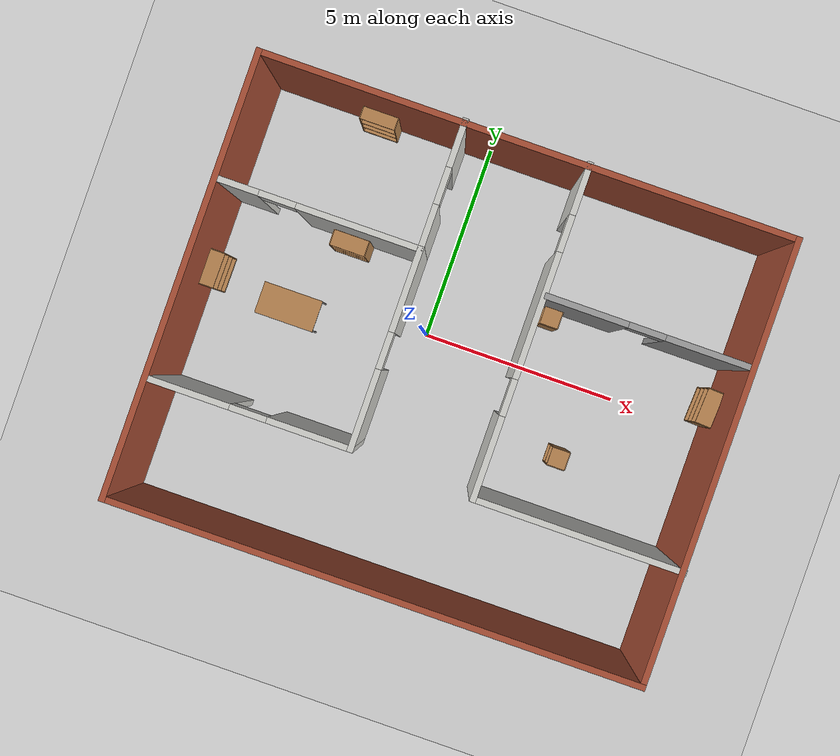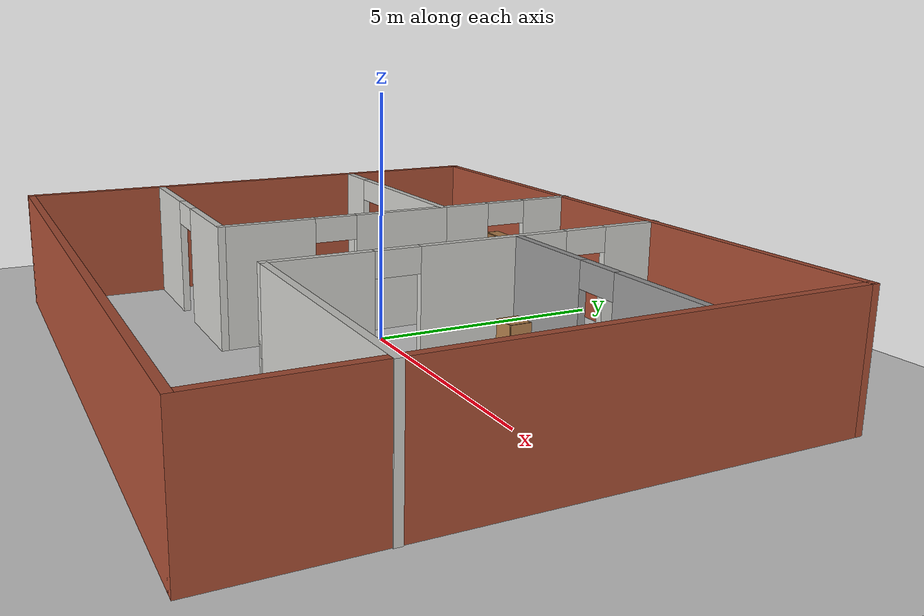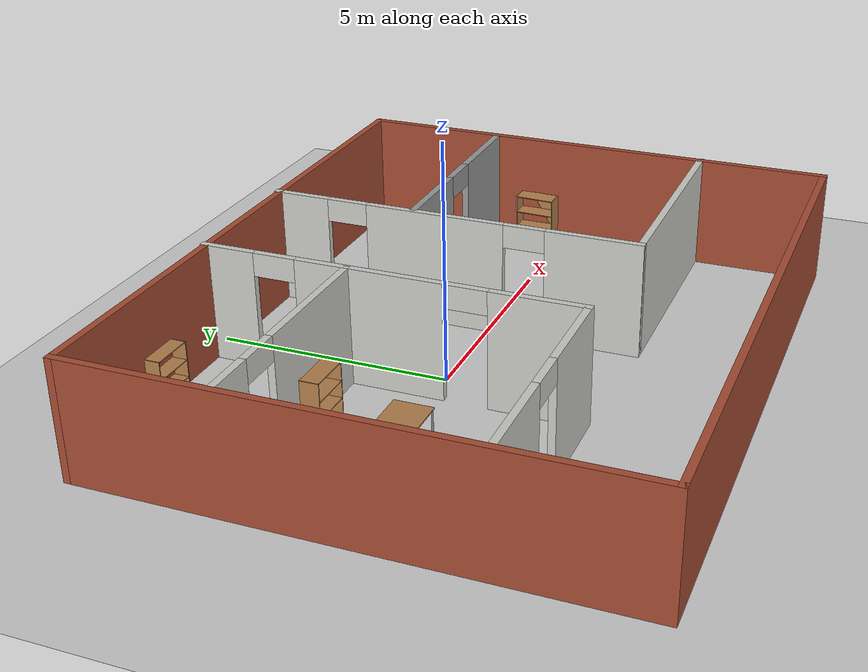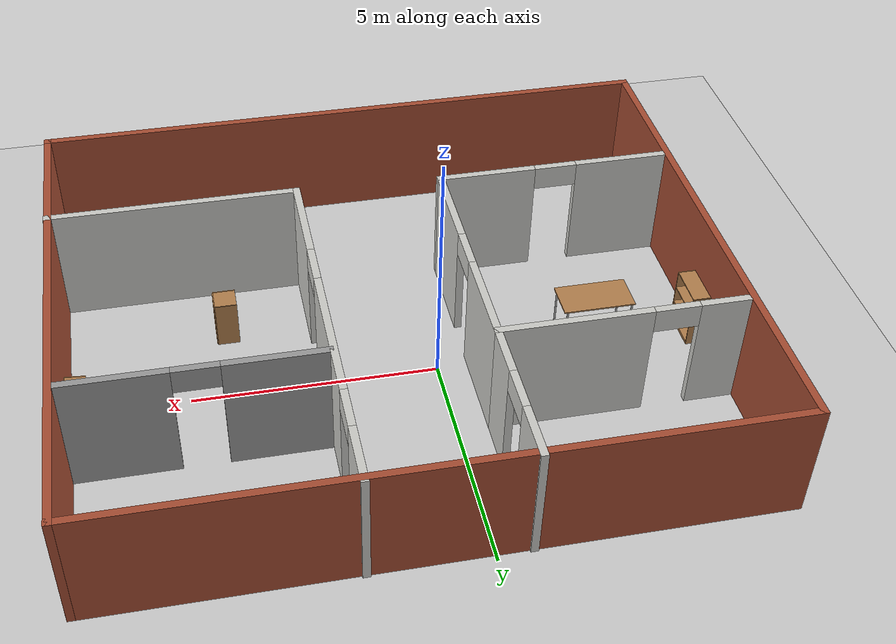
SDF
<sdf version="1.7">
 <world name="default">
  <light name="sun" type="directional">
   <pose>0 0 10 0 -0 0</pose>
   <diffuse>0.8 0.8 0.8 1</diffuse>
   <specular>0.2 0.2 0.2 1</specular>
   <attenuation>
    <range>1000</range>
    <constant>0.9</constant>
    <linear>0.01</linear>
    <quadratic>0.001</quadratic>
   </attenuation>
   <direction>-0.5 0.1 -0.9</direction>
   <spot><inner_angle>0</inner_angle><outer_angle>0</outer_angle><falloff>0</falloff></spot>
  </light>
  <model name="ground_plane">
   <static>1</static>
   <link name="link">
    <collision name="collision">
     <geometry><plane><normal>0 0 1</normal><size>100 100</size></plane></geometry>
     <surface>
      <contact><collide_bitmask>65535</collide_bitmask></contact>
      <friction><ode><mu>100</mu><mu2>50</mu2></ode></friction>
     </surface>
    </collision>
    <visual name="visual">
     <cast_shadows>0</cast_shadows>
     <geometry><plane><normal>0 0 1</normal><size>100 100</size></plane></geometry>
     <material>
      <script><uri>file://media/materials/scripts/gazebo.material</uri><name>Gazebo/Grey</name></script>
     </material>
    </visual>
   </link>
  </model>
  <gravity>0 0 -9.8</gravity>
  <magnetic_field>6e-06 2.3e-05 -4.2e-05</magnetic_field>
  <atmosphere type="adiabatic"/>
  <physics type="ode">
   <max_step_size>0.001</max_step_size>
   <real_time_factor>1</real_time_factor>
   <real_time_update_rate>1000</real_time_update_rate>
  </physics>
  <scene><ambient>0.4 0.4 0.4 1</ambient><background>0.7 0.7 0.7 1</background><shadows>1</shadows></scene>
  <audio><device>default</device></audio>
  <spherical_coordinates>
   <surface_model>EARTH_WGS84</surface_model>
   <latitude_deg>0</latitude_deg>
   <longitude_deg>0</longitude_deg>
   <elevation>0</elevation>
   <heading_deg>0</heading_deg>
  </spherical_coordinates>
  <model name="floor">
   <pose>0.879986 -0.596794 0 0 -0 0</pose>
   <link name="Wall_0">
    <collision name="Wall_0_Collision">
     <geometry><box><size>11 0.15 2.5</size></box></geometry>
     <pose>0 0 1.25 0 -0 0</pose>
    </collision>
    <visual name="Wall_0_Visual">
     <pose>0 0 1.25 0 -0 0</pose>
     <geometry><box><size>11 0.15 2.5</size></box></geometry>
     <material>
      <script><uri>file://media/materials/scripts/gazebo.material</uri><name>Gazebo/Bricks</name></script>
      <ambient>1 1 1 1</ambient>
     </material>
     <meta><layer>0</layer></meta>
    </visual>
    <pose>-6.56 -0.02 0 0 -0 -1.5708</pose>
   </link>
   <link name="Wall_1">
    <collision name="Wall_1_Collision">
     <geometry><box><size>13.25 0.15 2.5</size></box></geometry>
     <pose>0 0 1.25 0 -0 0</pose>
    </collision>
    <visual name="Wall_1_Visual">
     <pose>0 0 1.25 0 -0 0</pose>
     <geometry><box><size>13.25 0.15 2.5</size></box></geometry>
     <material>
      <script><uri>file://media/materials/scripts/gazebo.material</uri><name>Gazebo/Bricks</name></script>
      <ambient>1 1 1 1</ambient>
     </material>
     <meta><layer>0</layer></meta>
    </visual>
    <pose>-0.01 -5.445 0 0 -0 0</pose>
   </link>
   <link name="Wall_11">
    <pose>-1.57 -0.08 0 0 -0 -1.5708</pose>
    <visual name="Wall_11_Visual_0">
     <pose>-1.4575 0 1.25 0 -0 0</pose>
     <geometry><box><size>2.085 0.15 2.5</size></box></geometry>
     <material>
      <script><uri>file://media/materials/scripts/gazebo.material</uri><name>Gazebo/CeilingTiled</name></script>
      <ambient>1 1 1 1</ambient>
     </material>
     <meta><layer>0</layer></meta>
    </visual>
    <collision name="Wall_11_Collision_0">
     <geometry><box><size>2.085 0.15 2.5</size></box></geometry>
     <pose>-1.4575 0 1.25 0 -0 0</pose>
    </collision>
    <visual name="Wall_11_Visual_1">
     <pose>1.4925 0 1.25 0 -0 0</pose>
     <geometry><box><size>2.015 0.15 2.5</size></box></geometry>
     <material>
      <script><uri>file://media/materials/scripts/gazebo.material</uri><name>Gazebo/CeilingTiled</name></script>
      <ambient>1 1 1 1</ambient>
     </material>
     <meta><layer>0</layer></meta>
    </visual>
    <collision name="Wall_11_Collision_1">
     <geometry><box><size>2.015 0.15 2.5</size></box></geometry>
     <pose>1.4925 0 1.25 0 -0 0</pose>
    </collision>
    <visual name="Wall_11_Visual_2">
     <pose>0.035 0 2.25 0 -0 0</pose>
     <geometry><box><size>0.9 0.15 0.5</size></box></geometry>
     <material>
      <script><uri>file://media/materials/scripts/gazebo.material</uri><name>Gazebo/CeilingTiled</name></script>
      <ambient>1 1 1 1</ambient>
     </material>
     <meta><layer>0</layer></meta>
    </visual>
    <collision name="Wall_11_Collision_2">
     <geometry><box><size>0.9 0.15 0.5</size></box></geometry>
     <pose>0.035 0 2.25 0 -0 0</pose>
    </collision>
   </link>
   <link name="Wall_12">
    <pose>-3.995 -2.505 0 0 -0 3.14159</pose>
    <visual name="Wall_12_Visual_0">
     <pose>-1.4425 0 1.25 0 -0 0</pose>
     <geometry><box><size>2.115 0.15 2.5</size></box></geometry>
     <material>
      <script><uri>file://media/materials/scripts/gazebo.material</uri><name>Gazebo/CeilingTiled</name></script>
      <ambient>1 1 1 1</ambient>
     </material>
     <meta><layer>0</layer></meta>
    </visual>
    <collision name="Wall_12_Collision_0">
     <geometry><box><size>2.115 0.15 2.5</size></box></geometry>
     <pose>-1.4425 0 1.25 0 -0 0</pose>
    </collision>
    <visual name="Wall_12_Visual_1">
     <pose>1.5075 0 1.25 0 -0 0</pose>
     <geometry><box><size>1.985 0.15 2.5</size></box></geometry>
     <material>
      <script><uri>file://media/materials/scripts/gazebo.material</uri><name>Gazebo/CeilingTiled</name></script>
      <ambient>1 1 1 1</ambient>
     </material>
     <meta><layer>0</layer></meta>
    </visual>
    <collision name="Wall_12_Collision_1">
     <geometry><box><size>1.985 0.15 2.5</size></box></geometry>
     <pose>1.5075 0 1.25 0 -0 0</pose>
    </collision>
    <visual name="Wall_12_Visual_2">
     <pose>0.065 0 2.25 0 -0 0</pose>
     <geometry><box><size>0.9 0.15 0.5</size></box></geometry>
     <material>
      <script><uri>file://media/materials/scripts/gazebo.material</uri><name>Gazebo/CeilingTiled</name></script>
      <ambient>1 1 1 1</ambient>
     </material>
     <meta><layer>0</layer></meta>
    </visual>
    <collision name="Wall_12_Collision_2">
     <geometry><box><size>0.9 0.15 0.5</size></box></geometry>
     <pose>0.065 0 2.25 0 -0 0</pose>
    </collision>
   </link>
   <link name="Wall_14">
    <pose>3.965 2.285 0 0 -0 3.14159</pose>
    <visual name="Wall_14_Visual_0">
     <pose>-1.4725 0 1.25 0 -0 0</pose>
     <geometry><box><size>2.055 0.15 2.5</size></box></geometry>
     <material>
      <script><uri>file://media/materials/scripts/gazebo.material</uri><name>Gazebo/Grey</name></script>
      <ambient>1 1 1 1</ambient>
     </material>
     <meta><layer>0</layer></meta>
    </visual>
    <collision name="Wall_14_Collision_0">
     <geometry><box><size>2.055 0.15 2.5</size></box></geometry>
     <pose>-1.4725 0 1.25 0 -0 0</pose>
    </collision>
    <visual name="Wall_14_Visual_1">
     <pose>1.4775 0 1.25 0 -0 0</pose>
     <geometry><box><size>2.045 0.15 2.5</size></box></geometry>
     <material>
      <script><uri>file://media/materials/scripts/gazebo.material</uri><name>Gazebo/Grey</name></script>
      <ambient>1 1 1 1</ambient>
     </material>
     <meta><layer>0</layer></meta>
    </visual>
    <collision name="Wall_14_Collision_1">
     <geometry><box><size>2.045 0.15 2.5</size></box></geometry>
     <pose>1.4775 0 1.25 0 -0 0</pose>
    </collision>
    <visual name="Wall_14_Visual_2">
     <pose>0.005 0 2.25 0 -0 0</pose>
     <geometry><box><size>0.9 0.15 0.5</size></box></geometry>
     <material>
      <script><uri>file://media/materials/scripts/gazebo.material</uri><name>Gazebo/Grey</name></script>
      <ambient>1 1 1 1</ambient>
     </material>
     <meta><layer>0</layer></meta>
    </visual>
    <collision name="Wall_14_Collision_2">
     <geometry><box><size>0.9 0.15 0.5</size></box></geometry>
     <pose>0.005 0 2.25 0 -0 0</pose>
    </collision>
   </link>
   <link name="Wall_2">
    <collision name="Wall_2_Collision">
     <geometry><box><size>11 0.15 2.5</size></box></geometry>
     <pose>0 0 1.25 0 -0 0</pose>
    </collision>
    <visual name="Wall_2_Visual">
     <pose>0 0 1.25 0 -0 0</pose>
     <geometry><box><size>11 0.15 2.5</size></box></geometry>
     <material>
      <script><uri>file://media/materials/scripts/gazebo.material</uri><name>Gazebo/Bricks</name></script>
      <ambient>1 1 1 1</ambient>
     </material>
     <meta><layer>0</layer></meta>
    </visual>
    <pose>6.54 -0.02 0 0 -0 1.5708</pose>
   </link>
   <link name="Wall_3">
    <collision name="Wall_3_Collision">
     <geometry><box><size>13.25 0.15 2.5</size></box></geometry>
     <pose>0 0 1.25 0 -0 0</pose>
    </collision>
    <visual name="Wall_3_Visual">
     <pose>0 0 1.25 0 -0 0</pose>
     <geometry><box><size>13.25 0.15 2.5</size></box></geometry>
     <material>
      <script><uri>file://media/materials/scripts/gazebo.material</uri><name>Gazebo/Bricks</name></script>
      <ambient>1 1 1 1</ambient>
     </material>
     <meta><layer>0</layer></meta>
    </visual>
    <pose>-0.01 5.405 0 0 -0 3.14159</pose>
   </link>
   <link name="Wall_5">
    <pose>-3.995 2.345 0 0 -0 0</pose>
    <visual name="Wall_5_Visual_0">
     <pose>-1.9975 0 1.25 0 -0 0</pose>
     <geometry><box><size>1.005 0.15 2.5</size></box></geometry>
     <material>
      <script><uri>file://media/materials/scripts/gazebo.material</uri><name>Gazebo/CeilingTiled</name></script>
      <ambient>1 1 1 1</ambient>
     </material>
     <meta><layer>0</layer></meta>
    </visual>
    <collision name="Wall_5_Collision_0">
     <geometry><box><size>1.005 0.15 2.5</size></box></geometry>
     <pose>-1.9975 0 1.25 0 -0 0</pose>
    </collision>
    <visual name="Wall_5_Visual_1">
     <pose>0.9525 0 1.25 0 -0 0</pose>
     <geometry><box><size>3.095 0.15 2.5</size></box></geometry>
     <material>
      <script><uri>file://media/materials/scripts/gazebo.material</uri><name>Gazebo/CeilingTiled</name></script>
      <ambient>1 1 1 1</ambient>
     </material>
     <meta><layer>0</layer></meta>
    </visual>
    <collision name="Wall_5_Collision_1">
     <geometry><box><size>3.095 0.15 2.5</size></box></geometry>
     <pose>0.9525 0 1.25 0 -0 0</pose>
    </collision>
    <visual name="Wall_5_Visual_2">
     <pose>-1.045 0 2.25 0 -0 0</pose>
     <geometry><box><size>0.9 0.15 0.5</size></box></geometry>
     <material>
      <script><uri>file://media/materials/scripts/gazebo.material</uri><name>Gazebo/CeilingTiled</name></script>
      <ambient>1 1 1 1</ambient>
     </material>
     <meta><layer>0</layer></meta>
    </visual>
    <collision name="Wall_5_Collision_2">
     <geometry><box><size>0.9 0.15 0.5</size></box></geometry>
     <pose>-1.045 0 2.25 0 -0 0</pose>
    </collision>
   </link>
   <link name="Wall_6">
    <pose>-1.57 3.895 0 0 -0 1.5708</pose>
    <visual name="Wall_6_Visual_0">
     <pose>-1.0425 0 1.25 0 -0 0</pose>
     <geometry><box><size>1.165 0.15 2.5</size></box></geometry>
     <material>
      <script><uri>file://media/materials/scripts/gazebo.material</uri><name>Gazebo/CeilingTiled</name></script>
      <ambient>1 1 1 1</ambient>
     </material>
     <meta><layer>0</layer></meta>
    </visual>
    <collision name="Wall_6_Collision_0">
     <geometry><box><size>1.165 0.15 2.5</size></box></geometry>
     <pose>-1.0425 0 1.25 0 -0 0</pose>
    </collision>
    <visual name="Wall_6_Visual_1">
     <pose>1.0325 0 1.25 0 -0 0</pose>
     <geometry><box><size>1.185 0.15 2.5</size></box></geometry>
     <material>
      <script><uri>file://media/materials/scripts/gazebo.material</uri><name>Gazebo/CeilingTiled</name></script>
      <ambient>1 1 1 1</ambient>
     </material>
     <meta><layer>0</layer></meta>
    </visual>
    <collision name="Wall_6_Collision_1">
     <geometry><box><size>1.185 0.15 2.5</size></box></geometry>
     <pose>1.0325 0 1.25 0 -0 0</pose>
    </collision>
    <visual name="Wall_6_Visual_2">
     <pose>-0.01 0 2.25 0 -0 0</pose>
     <geometry><box><size>0.9 0.15 0.5</size></box></geometry>
     <material>
      <script><uri>file://media/materials/scripts/gazebo.material</uri><name>Gazebo/CeilingTiled</name></script>
      <ambient>1 1 1 1</ambient>
     </material>
     <meta><layer>0</layer></meta>
    </visual>
    <collision name="Wall_6_Collision_2">
     <geometry><box><size>0.9 0.15 0.5</size></box></geometry>
     <pose>-0.01 0 2.25 0 -0 0</pose>
    </collision>
   </link>
   <link name="Wall_8">
    <pose>1.46 1.395 0 0 -0 -1.5708</pose>
    <visual name="Wall_8_Visual_0">
     <pose>-3.4825 0 1.25 0 -0 0</pose>
     <geometry><box><size>1.285 0.15 2.5</size></box></geometry>
     <material>
      <script><uri>file://media/materials/scripts/gazebo.material</uri><name>Gazebo/CeilingTiled</name></script>
      <ambient>1 1 1 1</ambient>
     </material>
     <meta><layer>0</layer></meta>
    </visual>
    <collision name="Wall_8_Collision_0">
     <geometry><box><size>1.285 0.15 2.5</size></box></geometry>
     <pose>-3.4825 0 1.25 0 -0 0</pose>
    </collision>
    <visual name="Wall_8_Visual_1">
     <pose>-0.4 0 1.25 0 -0 0</pose>
     <geometry><box><size>3.08 0.15 2.5</size></box></geometry>
     <material>
      <script><uri>file://media/materials/scripts/gazebo.material</uri><name>Gazebo/CeilingTiled</name></script>
      <ambient>1 1 1 1</ambient>
     </material>
     <meta><layer>0</layer></meta>
    </visual>
    <collision name="Wall_8_Collision_1">
     <geometry><box><size>3.08 0.15 2.5</size></box></geometry>
     <pose>-0.4 0 1.25 0 -0 0</pose>
    </collision>
    <visual name="Wall_8_Visual_2">
     <pose>3.0825 0 1.25 0 -0 0</pose>
     <geometry><box><size>2.085 0.15 2.5</size></box></geometry>
     <material>
      <script><uri>file://media/materials/scripts/gazebo.material</uri><name>Gazebo/CeilingTiled</name></script>
      <ambient>1 1 1 1</ambient>
     </material>
     <meta><layer>0</layer></meta>
    </visual>
    <collision name="Wall_8_Collision_2">
     <geometry><box><size>2.085 0.15 2.5</size></box></geometry>
     <pose>3.0825 0 1.25 0 -0 0</pose>
    </collision>
    <visual name="Wall_8_Visual_3">
     <pose>-2.39 0 2.25 0 -0 0</pose>
     <geometry><box><size>0.9 0.15 0.5</size></box></geometry>
     <material>
      <script><uri>file://media/materials/scripts/gazebo.material</uri><name>Gazebo/CeilingTiled</name></script>
      <ambient>1 1 1 1</ambient>
     </material>
     <meta><layer>0</layer></meta>
    </visual>
    <collision name="Wall_8_Collision_3">
     <geometry><box><size>0.9 0.15 0.5</size></box></geometry>
     <pose>-2.39 0 2.25 0 -0 0</pose>
    </collision>
    <visual name="Wall_8_Visual_4">
     <pose>1.59 0 2.25 0 -0 0</pose>
     <geometry><box><size>0.9 0.15 0.5</size></box></geometry>
     <material>
      <script><uri>file://media/materials/scripts/gazebo.material</uri><name>Gazebo/CeilingTiled</name></script>
      <ambient>1 1 1 1</ambient>
     </material>
     <meta><layer>0</layer></meta>
    </visual>
    <collision name="Wall_8_Collision_4">
     <geometry><box><size>0.9 0.15 0.5</size></box></geometry>
     <pose>1.59 0 2.25 0 -0 0</pose>
    </collision>
   </link>
   <link name="Wall_9">
    <collision name="Wall_9_Collision">
     <geometry><box><size>5.25 0.15 2.5</size></box></geometry>
     <pose>0 0 1.25 0 -0 0</pose>
    </collision>
    <visual name="Wall_9_Visual">
     <pose>0 0 1.25 0 -0 0</pose>
     <geometry><box><size>5.25 0.15 2.5</size></box></geometry>
     <material>
      <script><uri>file://media/materials/scripts/gazebo.material</uri><name>Gazebo/CeilingTiled</name></script>
      <ambient>1 1 1 1</ambient>
     </material>
     <meta><layer>0</layer></meta>
    </visual>
    <pose>4.01 -2.655 0 0 -0 0</pose>
   </link>
   <static>1</static>
  </model>
  <model name="bookshelf">
   <static>1</static>
   <link name="link">
    <inertial><mass>1</mass></inertial>
    <collision name="back">
     <pose>0 0.005 0.6 0 -0 0</pose>
     <geometry><box><size>0.9 0.01 1.2</size></box></geometry>
    </collision>
    <visual name="visual1">
     <pose>0 0.005 0.6 0 -0 0</pose>
     <geometry><box><size>0.9 0.01 1.2</size></box></geometry>
     <material>
      <script><uri>file://media/materials/scripts/gazebo.material</uri><name>Gazebo/Wood</name></script>
     </material>
    </visual>
    <collision name="left_side">
     <pose>0.45 -0.195 0.6 0 -0 0</pose>
     <geometry><box><size>0.02 0.4 1.2</size></box></geometry>
    </collision>
    <visual name="visual2">
     <pose>0.45 -0.195 0.6 0 -0 0</pose>
     <geometry><box><size>0.02 0.4 1.2</size></box></geometry>
     <material>
      <script><uri>file://media/materials/scripts/gazebo.material</uri><name>Gazebo/Wood</name></script>
     </material>
    </visual>
    <collision name="right_side">
     <pose>-0.45 -0.195 0.6 0 -0 0</pose>
     <geometry><box><size>0.02 0.4 1.2</size></box></geometry>
    </collision>
    <visual name="visual3">
     <pose>-0.45 -0.195 0.6 0 -0 0</pose>
     <geometry><box><size>0.02 0.4 1.2</size></box></geometry>
     <material>
      <script><uri>file://media/materials/scripts/gazebo.material</uri><name>Gazebo/Wood</name></script>
     </material>
    </visual>
    <collision name="bottom">
     <pose>0 -0.195 0.03 0 -0 0</pose>
     <geometry><box><size>0.88 0.4 0.06</size></box></geometry>
    </collision>
    <visual name="visual4">
     <pose>0 -0.195 0.03 0 -0 0</pose>
     <geometry><box><size>0.88 0.4 0.06</size></box></geometry>
     <material>
      <script><uri>file://media/materials/scripts/gazebo.material</uri><name>Gazebo/Wood</name></script>
     </material>
    </visual>
    <collision name="top">
     <pose>0 -0.195 1.19 0 -0 0</pose>
     <geometry><box><size>0.88 0.4 0.02</size></box></geometry>
    </collision>
    <visual name="visual5">
     <pose>0 -0.195 1.19 0 -0 0</pose>
     <geometry><box><size>0.88 0.4 0.02</size></box></geometry>
     <material>
      <script><uri>file://media/materials/scripts/gazebo.material</uri><name>Gazebo/Wood</name></script>
     </material>
    </visual>
    <collision name="low_shelf">
     <pose>0 -0.195 0.43 0 -0 0</pose>
     <geometry><box><size>0.88 0.4 0.02</size></box></geometry>
    </collision>
    <visual name="visual6">
     <pose>0 -0.195 0.43 0 -0 0</pose>
     <geometry><box><size>0.88 0.4 0.02</size></box></geometry>
     <material>
      <script><uri>file://media/materials/scripts/gazebo.material</uri><name>Gazebo/Wood</name></script>
     </material>
    </visual>
    <collision name="high_shelf">
     <pose>0 -0.195 0.8 0 -0 0</pose>
     <geometry><box><size>0.88 0.4 0.02</size></box></geometry>
    </collision>
    <visual name="visual7">
     <pose>0 -0.195 0.8 0 -0 0</pose>
     <geometry><box><size>0.88 0.4 0.02</size></box></geometry>
     <material>
      <script><uri>file://media/materials/scripts/gazebo.material</uri><name>Gazebo/Wood</name></script>
     </material>
    </visual>
   </link>
   <pose>-2.46761 1.66972 0 0 -0 0</pose>
  </model>
  <model name="bookshelf_0">
   <static>1</static>
   <link name="link">
    <inertial><mass>1</mass></inertial>
    <collision name="back">
     <pose>0 0.005 0.6 0 -0 0</pose>
     <geometry><box><size>0.9 0.01 1.2</size></box></geometry>
    </collision>
    <visual name="visual1">
     <pose>0 0.005 0.6 0 -0 0</pose>
     <geometry><box><size>0.9 0.01 1.2</size></box></geometry>
     <material>
      <script><uri>file://media/materials/scripts/gazebo.material</uri><name>Gazebo/Wood</name></script>
     </material>
    </visual>
    <collision name="left_side">
     <pose>0.45 -0.195 0.6 0 -0 0</pose>
     <geometry><box><size>0.02 0.4 1.2</size></box></geometry>
    </collision>
    <visual name="visual2">
     <pose>0.45 -0.195 0.6 0 -0 0</pose>
     <geometry><box><size>0.02 0.4 1.2</size></box></geometry>
     <material>
      <script><uri>file://media/materials/scripts/gazebo.material</uri><name>Gazebo/Wood</name></script>
     </material>
    </visual>
    <collision name="right_side">
     <pose>-0.45 -0.195 0.6 0 -0 0</pose>
     <geometry><box><size>0.02 0.4 1.2</size></box></geometry>
    </collision>
    <visual name="visual3">
     <pose>-0.45 -0.195 0.6 0 -0 0</pose>
     <geometry><box><size>0.02 0.4 1.2</size></box></geometry>
     <material>
      <script><uri>file://media/materials/scripts/gazebo.material</uri><name>Gazebo/Wood</name></script>
     </material>
    </visual>
    <collision name="bottom">
     <pose>0 -0.195 0.03 0 -0 0</pose>
     <geometry><box><size>0.88 0.4 0.06</size></box></geometry>
    </collision>
    <visual name="visual4">
     <pose>0 -0.195 0.03 0 -0 0</pose>
     <geometry><box><size>0.88 0.4 0.06</size></box></geometry>
     <material>
      <script><uri>file://media/materials/scripts/gazebo.material</uri><name>Gazebo/Wood</name></script>
     </material>
    </visual>
    <collision name="top">
     <pose>0 -0.195 1.19 0 -0 0</pose>
     <geometry><box><size>0.88 0.4 0.02</size></box></geometry>
    </collision>
    <visual name="visual5">
     <pose>0 -0.195 1.19 0 -0 0</pose>
     <geometry><box><size>0.88 0.4 0.02</size></box></geometry>
     <material>
      <script><uri>file://media/materials/scripts/gazebo.material</uri><name>Gazebo/Wood</name></script>
     </material>
    </visual>
    <collision name="low_shelf">
     <pose>0 -0.195 0.43 0 -0 0</pose>
     <geometry><box><size>0.88 0.4 0.02</size></box></geometry>
    </collision>
    <visual name="visual6">
     <pose>0 -0.195 0.43 0 -0 0</pose>
     <geometry><box><size>0.88 0.4 0.02</size></box></geometry>
     <material>
      <script><uri>file://media/materials/scripts/gazebo.material</uri><name>Gazebo/Wood</name></script>
     </material>
    </visual>
    <collision name="high_shelf">
     <pose>0 -0.195 0.8 0 -0 0</pose>
     <geometry><box><size>0.88 0.4 0.02</size></box></geometry>
    </collision>
    <visual name="visual7">
     <pose>0 -0.195 0.8 0 -0 0</pose>
     <geometry><box><size>0.88 0.4 0.02</size></box></geometry>
     <material>
      <script><uri>file://media/materials/scripts/gazebo.material</uri><name>Gazebo/Wood</name></script>
     </material>
    </visual>
   </link>
   <pose>7.37156 0.561124 -0.010779 0.031298 0.001604 -1.622</pose>
  </model>
  <model name="bookshelf_1">
   <static>1</static>
   <link name="link">
    <inertial><mass>1</mass></inertial>
    <collision name="back">
     <pose>0 0.005 0.6 0 -0 0</pose>
     <geometry><box><size>0.9 0.01 1.2</size></box></geometry>
    </collision>
    <visual name="visual1">
     <pose>0 0.005 0.6 0 -0 0</pose>
     <geometry><box><size>0.9 0.01 1.2</size></box></geometry>
     <material>
      <script><uri>file://media/materials/scripts/gazebo.material</uri><name>Gazebo/Wood</name></script>
     </material>
    </visual>
    <collision name="left_side">
     <pose>0.45 -0.195 0.6 0 -0 0</pose>
     <geometry><box><size>0.02 0.4 1.2</size></box></geometry>
    </collision>
    <visual name="visual2">
     <pose>0.45 -0.195 0.6 0 -0 0</pose>
     <geometry><box><size>0.02 0.4 1.2</size></box></geometry>
     <material>
      <script><uri>file://media/materials/scripts/gazebo.material</uri><name>Gazebo/Wood</name></script>
     </material>
    </visual>
    <collision name="right_side">
     <pose>-0.45 -0.195 0.6 0 -0 0</pose>
     <geometry><box><size>0.02 0.4 1.2</size></box></geometry>
    </collision>
    <visual name="visual3">
     <pose>-0.45 -0.195 0.6 0 -0 0</pose>
     <geometry><box><size>0.02 0.4 1.2</size></box></geometry>
     <material>
      <script><uri>file://media/materials/scripts/gazebo.material</uri><name>Gazebo/Wood</name></script>
     </material>
    </visual>
    <collision name="bottom">
     <pose>0 -0.195 0.03 0 -0 0</pose>
     <geometry><box><size>0.88 0.4 0.06</size></box></geometry>
    </collision>
    <visual name="visual4">
     <pose>0 -0.195 0.03 0 -0 0</pose>
     <geometry><box><size>0.88 0.4 0.06</size></box></geometry>
     <material>
      <script><uri>file://media/materials/scripts/gazebo.material</uri><name>Gazebo/Wood</name></script>
     </material>
    </visual>
    <collision name="top">
     <pose>0 -0.195 1.19 0 -0 0</pose>
     <geometry><box><size>0.88 0.4 0.02</size></box></geometry>
    </collision>
    <visual name="visual5">
     <pose>0 -0.195 1.19 0 -0 0</pose>
     <geometry><box><size>0.88 0.4 0.02</size></box></geometry>
     <material>
      <script><uri>file://media/materials/scripts/gazebo.material</uri><name>Gazebo/Wood</name></script>
     </material>
    </visual>
    <collision name="low_shelf">
     <pose>0 -0.195 0.43 0 -0 0</pose>
     <geometry><box><size>0.88 0.4 0.02</size></box></geometry>
    </collision>
    <visual name="visual6">
     <pose>0 -0.195 0.43 0 -0 0</pose>
     <geometry><box><size>0.88 0.4 0.02</size></box></geometry>
     <material>
      <script><uri>file://media/materials/scripts/gazebo.material</uri><name>Gazebo/Wood</name></script>
     </material>
    </visual>
    <collision name="high_shelf">
     <pose>0 -0.195 0.8 0 -0 0</pose>
     <geometry><box><size>0.88 0.4 0.02</size></box></geometry>
    </collision>
    <visual name="visual7">
     <pose>0 -0.195 0.8 0 -0 0</pose>
     <geometry><box><size>0.88 0.4 0.02</size></box></geometry>
     <material>
      <script><uri>file://media/materials/scripts/gazebo.material</uri><name>Gazebo/Wood</name></script>
     </material>
    </visual>
   </link>
   <pose>-5.63291 -0.214127 0 0 -0 1.56163</pose>
  </model>
  <model name="bookshelf_2">
   <static>1</static>
   <link name="link">
    <inertial><mass>1</mass></inertial>
    <collision name="back">
     <pose>0 0.005 0.6 0 -0 0</pose>
     <geometry><box><size>0.9 0.01 1.2</size></box></geometry>
    </collision>
    <visual name="visual1">
     <pose>0 0.005 0.6 0 -0 0</pose>
     <geometry><box><size>0.9 0.01 1.2</size></box></geometry>
     <material>
      <script><uri>file://media/materials/scripts/gazebo.material</uri><name>Gazebo/Wood</name></script>
     </material>
    </visual>
    <collision name="left_side">
     <pose>0.45 -0.195 0.6 0 -0 0</pose>
     <geometry><box><size>0.02 0.4 1.2</size></box></geometry>
    </collision>
    <visual name="visual2">
     <pose>0.45 -0.195 0.6 0 -0 0</pose>
     <geometry><box><size>0.02 0.4 1.2</size></box></geometry>
     <material>
      <script><uri>file://media/materials/scripts/gazebo.material</uri><name>Gazebo/Wood</name></script>
     </material>
    </visual>
    <collision name="right_side">
     <pose>-0.45 -0.195 0.6 0 -0 0</pose>
     <geometry><box><size>0.02 0.4 1.2</size></box></geometry>
    </collision>
    <visual name="visual3">
     <pose>-0.45 -0.195 0.6 0 -0 0</pose>
     <geometry><box><size>0.02 0.4 1.2</size></box></geometry>
     <material>
      <script><uri>file://media/materials/scripts/gazebo.material</uri><name>Gazebo/Wood</name></script>
     </material>
    </visual>
    <collision name="bottom">
     <pose>0 -0.195 0.03 0 -0 0</pose>
     <geometry><box><size>0.88 0.4 0.06</size></box></geometry>
    </collision>
    <visual name="visual4">
     <pose>0 -0.195 0.03 0 -0 0</pose>
     <geometry><box><size>0.88 0.4 0.06</size></box></geometry>
     <material>
      <script><uri>file://media/materials/scripts/gazebo.material</uri><name>Gazebo/Wood</name></script>
     </material>
    </visual>
    <collision name="top">
     <pose>0 -0.195 1.19 0 -0 0</pose>
     <geometry><box><size>0.88 0.4 0.02</size></box></geometry>
    </collision>
    <visual name="visual5">
     <pose>0 -0.195 1.19 0 -0 0</pose>
     <geometry><box><size>0.88 0.4 0.02</size></box></geometry>
     <material>
      <script><uri>file://media/materials/scripts/gazebo.material</uri><name>Gazebo/Wood</name></script>
     </material>
    </visual>
    <collision name="low_shelf">
     <pose>0 -0.195 0.43 0 -0 0</pose>
     <geometry><box><size>0.88 0.4 0.02</size></box></geometry>
    </collision>
    <visual name="visual6">
     <pose>0 -0.195 0.43 0 -0 0</pose>
     <geometry><box><size>0.88 0.4 0.02</size></box></geometry>
     <material>
      <script><uri>file://media/materials/scripts/gazebo.material</uri><name>Gazebo/Wood</name></script>
     </material>
    </visual>
    <collision name="high_shelf">
     <pose>0 -0.195 0.8 0 -0 0</pose>
     <geometry><box><size>0.88 0.4 0.02</size></box></geometry>
    </collision>
    <visual name="visual7">
     <pose>0 -0.195 0.8 0 -0 0</pose>
     <geometry><box><size>0.88 0.4 0.02</size></box></geometry>
     <material>
      <script><uri>file://media/materials/scripts/gazebo.material</uri><name>Gazebo/Wood</name></script>
     </material>
    </visual>
   </link>
   <pose>-2.78869 4.8124 0 0 -0 0</pose>
  </model>
  <model name="table">
   <static>1</static>
   <link name="link">
    <collision name="surface">
     <pose>0 0 1 0 -0 0</pose>
     <geometry><box><size>1.5 0.8 0.03</size></box></geometry>
     <surface><friction><ode><mu>0.6</mu><mu2>0.6</mu2></ode></friction></surface>
    </collision>
    <visual name="visual1">
     <pose>0 0 1 0 -0 0</pose>
     <geometry><box><size>1.5 0.8 0.03</size></box></geometry>
     <material>
      <script><uri>file://media/materials/scripts/gazebo.material</uri><name>Gazebo/Wood</name></script>
     </material>
    </visual>
    <collision name="front_left_leg">
     <pose>0.68 0.38 0.5 0 -0 0</pose>
     <geometry><cylinder><radius>0.02</radius><length>1</length></cylinder></geometry>
    </collision>
    <visual name="front_left_leg">
     <pose>0.68 0.38 0.5 0 -0 0</pose>
     <geometry><cylinder><radius>0.02</radius><length>1</length></cylinder></geometry>
     <material>
      <script><uri>file://media/materials/scripts/gazebo.material</uri><name>Gazebo/Grey</name></script>
     </material>
    </visual>
    <collision name="front_right_leg">
     <pose>0.68 -0.38 0.5 0 -0 0</pose>
     <geometry><cylinder><radius>0.02</radius><length>1</length></cylinder></geometry>
    </collision>
    <visual name="front_right_leg">
     <pose>0.68 -0.38 0.5 0 -0 0</pose>
     <geometry><cylinder><radius>0.02</radius><length>1</length></cylinder></geometry>
     <material>
      <script><uri>file://media/materials/scripts/gazebo.material</uri><name>Gazebo/Grey</name></script>
     </material>
    </visual>
    <collision name="back_right_leg">
     <pose>-0.68 -0.38 0.5 0 -0 0</pose>
     <geometry><cylinder><radius>0.02</radius><length>1</length></cylinder></geometry>
    </collision>
    <visual name="back_right_leg">
     <pose>-0.68 -0.38 0.5 0 -0 0</pose>
     <geometry><cylinder><radius>0.02</radius><length>1</length></cylinder></geometry>
     <material>
      <script><uri>file://media/materials/scripts/gazebo.material</uri><name>Gazebo/Grey</name></script>
     </material>
    </visual>
    <collision name="back_left_leg">
     <pose>-0.68 0.38 0.5 0 -0 0</pose>
     <geometry><cylinder><radius>0.02</radius><length>1</length></cylinder></geometry>
    </collision>
    <visual name="back_left_leg">
     <pose>-0.68 0.38 0.5 0 -0 0</pose>
     <geometry><cylinder><radius>0.02</radius><length>1</length></cylinder></geometry>
     <material>
      <script><uri>file://media/materials/scripts/gazebo.material</uri><name>Gazebo/Grey</name></script>
     </material>
    </visual>
   </link>
   <pose>-3.388 -0.480125 0 0 -0 0</pose>
  </model>
  <model name="cabinet">
   <static>1</static>
   <link name="cabinet_bottom_plate">
    <inertial>
     <pose>0 0 -1 0 -0 0</pose>
     <inertia><ixx>2.05</ixx><ixy>0</ixy><ixz>0</ixz><iyy>2.05</iyy><iyz>0</iyz><izz>2.05</izz></inertia>
     <mass>25</mass>
    </inertial>
    <collision name="cabinet_bottom_plate_geom">
     <pose>0 0 0.01 0 -0 0</pose>
     <geometry><box><size>0.45 0.45 0.02</size></box></geometry>
    </collision>
    <visual name="cabinet_bottom_plate_geom_visual">
     <pose>0 0 0.01 0 -0 0</pose>
     <geometry><box><size>0.45 0.45 0.02</size></box></geometry>
     <material>
      <script><uri>file://media/materials/scripts/gazebo.material</uri><name>Gazebo/Wood</name></script>
     </material>
    </visual>
    <collision name="cabinet_bottom_plate_geom_cabinet_back_plate">
     <pose>0.235 0 0.51 0 -0 0</pose>
     <geometry><box><size>0.02 0.45 1.02</size></box></geometry>
    </collision>
    <visual name="cabinet_bottom_plate_geom_cabinet_back_plate_visual">
     <pose>0.235 0 0.51 0 -0 0</pose>
     <geometry><box><size>0.02 0.45 1.02</size></box></geometry>
     <material>
      <script><uri>file://media/materials/scripts/gazebo.material</uri><name>Gazebo/Wood</name></script>
     </material>
    </visual>
    <collision name="cabinet_bottom_plate_geom_cabinet_left_plate">
     <pose>0 0.235 0.51 0 -0 0</pose>
     <geometry><box><size>0.45 0.02 1.02</size></box></geometry>
    </collision>
    <visual name="cabinet_bottom_plate_geom_cabinet_left_plate_visual">
     <pose>0 0.235 0.51 0 -0 0</pose>
     <geometry><box><size>0.45 0.02 1.02</size></box></geometry>
     <material>
      <script><uri>file://media/materials/scripts/gazebo.material</uri><name>Gazebo/Wood</name></script>
     </material>
    </visual>
    <collision name="cabinet_bottom_plate_geom_cabinet_middle_plate">
     <pose>0 0 0.51 0 -0 0</pose>
     <geometry><box><size>0.45 0.45 0.02</size></box></geometry>
    </collision>
    <visual name="cabinet_bottom_plate_geom_cabinet_middle_plate_visual">
     <pose>0 0 0.51 0 -0 0</pose>
     <geometry><box><size>0.45 0.45 0.02</size></box></geometry>
     <material>
      <script><uri>file://media/materials/scripts/gazebo.material</uri><name>Gazebo/Wood</name></script>
     </material>
    </visual>
    <collision name="cabinet_bottom_plate_geom_cabinet_right_plate">
     <pose>0 -0.235 0.51 0 -0 0</pose>
     <geometry><box><size>0.45 0.02 1.02</size></box></geometry>
    </collision>
    <visual name="cabinet_bottom_plate_geom_cabinet_right_plate_visual">
     <pose>0 -0.235 0.51 0 -0 0</pose>
     <geometry><box><size>0.45 0.02 1.02</size></box></geometry>
     <material>
      <script><uri>file://media/materials/scripts/gazebo.material</uri><name>Gazebo/Wood</name></script>
     </material>
    </visual>
    <collision name="cabinet_bottom_plate_geom_cabinet_top_plate">
     <pose>0 0 1.01 0 -0 0</pose>
     <geometry><box><size>0.45 0.45 0.02</size></box></geometry>
    </collision>
    <visual name="cabinet_bottom_plate_geom_cabinet_top_plate_visual">
     <pose>0 0 1.01 0 -0 0</pose>
     <geometry><box><size>0.45 0.45 0.02</size></box></geometry>
     <material>
      <script><uri>file://media/materials/scripts/gazebo.material</uri><name>Gazebo/Wood</name></script>
     </material>
    </visual>
   </link>
   <pose>2.78717 1.40301 0 0 -0 0</pose>
  </model>
  <model name="cabinet_0">
   <static>1</static>
   <link name="cabinet_bottom_plate">
    <inertial>
     <pose>0 0 -1 0 -0 0</pose>
     <inertia><ixx>2.05</ixx><ixy>0</ixy><ixz>0</ixz><iyy>2.05</iyy><iyz>0</iyz><izz>2.05</izz></inertia>
     <mass>25</mass>
    </inertial>
    <collision name="cabinet_bottom_plate_geom">
     <pose>0 0 0.01 0 -0 0</pose>
     <geometry><box><size>0.45 0.45 0.02</size></box></geometry>
    </collision>
    <visual name="cabinet_bottom_plate_geom_visual">
     <pose>0 0 0.01 0 -0 0</pose>
     <geometry><box><size>0.45 0.45 0.02</size></box></geometry>
     <material>
      <script><uri>file://media/materials/scripts/gazebo.material</uri><name>Gazebo/Wood</name></script>
     </material>
    </visual>
    <collision name="cabinet_bottom_plate_geom_cabinet_back_plate">
     <pose>0.235 0 0.51 0 -0 0</pose>
     <geometry><box><size>0.02 0.45 1.02</size></box></geometry>
    </collision>
    <visual name="cabinet_bottom_plate_geom_cabinet_back_plate_visual">
     <pose>0.235 0 0.51 0 -0 0</pose>
     <geometry><box><size>0.02 0.45 1.02</size></box></geometry>
     <material>
      <script><uri>file://media/materials/scripts/gazebo.material</uri><name>Gazebo/Wood</name></script>
     </material>
    </visual>
    <collision name="cabinet_bottom_plate_geom_cabinet_left_plate">
     <pose>0 0.235 0.51 0 -0 0</pose>
     <geometry><box><size>0.45 0.02 1.02</size></box></geometry>
    </collision>
    <visual name="cabinet_bottom_plate_geom_cabinet_left_plate_visual">
     <pose>0 0.235 0.51 0 -0 0</pose>
     <geometry><box><size>0.45 0.02 1.02</size></box></geometry>
     <material>
      <script><uri>file://media/materials/scripts/gazebo.material</uri><name>Gazebo/Wood</name></script>
     </material>
    </visual>
    <collision name="cabinet_bottom_plate_geom_cabinet_middle_plate">
     <pose>0 0 0.51 0 -0 0</pose>
     <geometry><box><size>0.45 0.45 0.02</size></box></geometry>
    </collision>
    <visual name="cabinet_bottom_plate_geom_cabinet_middle_plate_visual">
     <pose>0 0 0.51 0 -0 0</pose>
     <geometry><box><size>0.45 0.45 0.02</size></box></geometry>
     <material>
      <script><uri>file://media/materials/scripts/gazebo.material</uri><name>Gazebo/Wood</name></script>
     </material>
    </visual>
    <collision name="cabinet_bottom_plate_geom_cabinet_right_plate">
     <pose>0 -0.235 0.51 0 -0 0</pose>
     <geometry><box><size>0.45 0.02 1.02</size></box></geometry>
    </collision>
    <visual name="cabinet_bottom_plate_geom_cabinet_right_plate_visual">
     <pose>0 -0.235 0.51 0 -0 0</pose>
     <geometry><box><size>0.45 0.02 1.02</size></box></geometry>
     <material>
      <script><uri>file://media/materials/scripts/gazebo.material</uri><name>Gazebo/Wood</name></script>
     </material>
    </visual>
    <collision name="cabinet_bottom_plate_geom_cabinet_top_plate">
     <pose>0 0 1.01 0 -0 0</pose>
     <geometry><box><size>0.45 0.45 0.02</size></box></geometry>
    </collision>
    <visual name="cabinet_bottom_plate_geom_cabinet_top_plate_visual">
     <pose>0 0 1.01 0 -0 0</pose>
     <geometry><box><size>0.45 0.45 0.02</size></box></geometry>
     <material>
      <script><uri>file://media/materials/scripts/gazebo.material</uri><name>Gazebo/Wood</name></script>
     </material>
    </visual>
   </link>
   <pose>4.09189 -1.81403 0 0 -0 0</pose>
  </model>
 </world>
</sdf>
